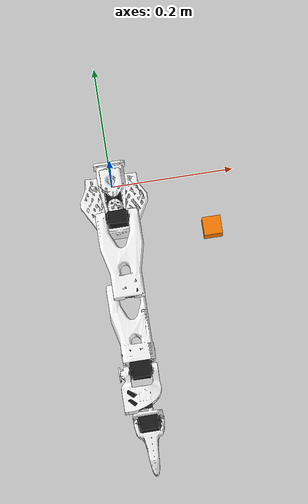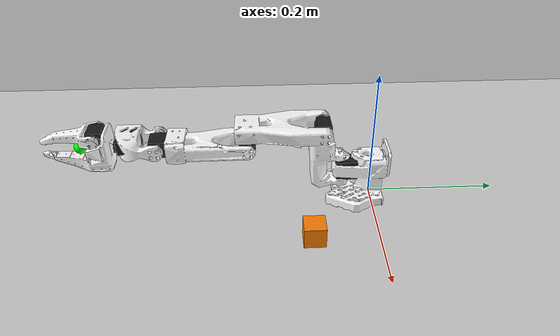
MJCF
<mujoco model="lerobot_so100_full">
    <compiler angle="radian" meshdir="../model/so100/assets" autolimits="true"/>

    <option timestep="0.001" cone="elliptic" impratio="10"/>

    <asset>
        <material name="black" rgba="0.1 0.1 0.1 1"/>
        <material name="white" rgba="1 1 1 1"/>

        <mesh name="Base" file="Base.stl"/>
        <mesh name="Base_Motor" file="Base_Motor.stl"/>
        <mesh name="Rotation_Pitch" file="Rotation_Pitch.stl"/>
        <mesh name="Rotation_Pitch_Motor" file="Rotation_Pitch_Motor.stl"/>
        <mesh name="Upper_Arm" file="Upper_Arm.stl"/>
        <mesh name="Upper_Arm_Motor" file="Upper_Arm_Motor.stl"/>
        <mesh name="Lower_Arm" file="Lower_Arm.stl"/>
        <mesh name="Lower_Arm_Motor" file="Lower_Arm_Motor.stl"/>
        <mesh name="Wrist_Pitch_Roll" file="Wrist_Pitch_Roll.stl"/>
        <mesh name="Wrist_Pitch_Roll_Motor" file="Wrist_Pitch_Roll_Motor.stl"/>
        <mesh name="Fixed_Jaw" file="Fixed_Jaw.stl"/>
        <mesh name="Fixed_Jaw_Motor" file="Fixed_Jaw_Motor.stl"/>
        <mesh name="Fixed_Jaw_Collision_1" file="Fixed_Jaw_Collision_1.stl"/>
        <mesh name="Fixed_Jaw_Collision_2" file="Fixed_Jaw_Collision_2.stl"/>
        <mesh name="Moving_Jaw" file="Moving_Jaw.stl"/>
        <mesh name="Moving_Jaw_Collision_1" file="Moving_Jaw_Collision_1.stl"/>
        <mesh name="Moving_Jaw_Collision_2" file="Moving_Jaw_Collision_2.stl"/>
        <mesh name="Moving_Jaw_Collision_3" file="Moving_Jaw_Collision_3.stl"/>
    </asset>

    <default>
        <default class="so_arm100">
            <!-- 극한의 응답성 및 안정성: frictionloss(3.0)로 중력 완벽 차단, armature(0.005)로 즉각 반응 -->
            <joint frictionloss="3.0" armature="0.005" damping="0.5"/>
            <!-- 초고속 위치 제어: kp(5000), kv(5), forcerange(500.0) -->
            <position kp="5000" kv="5" forcerange="-500 500"/>
            <default class="visual">
                <geom type="mesh" contype="0" conaffinity="0" density="0" group="2" material="white"/>
                <default class="motor_visual">
                    <geom material="black"/>
                </default>
            </default>
            <default class="collision">
                <geom group="3" type="mesh" material="white"/>
                <default class="finger_collision">
                    <geom type="box" solimp="2 1 0.01" solref="0.01 1" friction="1 0.005 0.0001"/>
                </default>
            </default>
        </default>
    </default>

    <worldbody>
        <light pos="0 0 2" dir="0 0 -1" diffuse="0.8 0.8 0.8" specular="0.3 0.3 0.3"/>
        <geom name="floor" type="plane" size="1 1 0.1" rgba="0.8 0.8 0.8 1" pos="0 0 -0.01"/>

        <body name="box" pos="0.15 -0.1 0.05">
            <joint type="free"/>
            <geom type="box" size="0.015 0.015 0.015" rgba="1 0.5 0 1" mass="0.05" friction="1 0.05 0.01"/>
        </body>

        <body name="Base" childclass="so_arm100" pos="0 0 0">
            <geom type="mesh" mesh="Base" class="visual"/>
            <geom type="mesh" mesh="Base_Motor" class="motor_visual"/>
            <geom type="mesh" mesh="Base" class="collision"/>

            <body name="Rotation_Pitch" pos="0 -0.0452 0.0165" quat="0.707105 0.707108 0 0">
                <joint name="Rotation" axis="0 1 0" range="-1.92 1.92"/>
                <geom type="mesh" mesh="Rotation_Pitch" class="visual"/>
                <geom type="mesh" mesh="Rotation_Pitch_Motor" class="motor_visual"/>
                <geom type="mesh" mesh="Rotation_Pitch" class="collision"/>

                <body name="Upper_Arm" pos="0 0.1025 0.0306" euler="1.57079 0 0">
                    <joint name="Pitch" axis="1 0 0" range="-3.32 0.174"/>
                    <geom type="mesh" mesh="Upper_Arm" class="visual"/>
                    <geom type="mesh" mesh="Upper_Arm_Motor" class="motor_visual"/>
                    <geom type="mesh" mesh="Upper_Arm" class="collision"/>

                    <body name="Lower_Arm" pos="0 0.11257 0.028" euler="-1.57079 0 0">
                        <joint name="Elbow" axis="1 0 0" range="-0.174 3.14"/>
                        <geom type="mesh" mesh="Lower_Arm" class="visual"/>
                        <geom type="mesh" mesh="Lower_Arm_Motor" class="motor_visual"/>
                        <geom type="mesh" mesh="Lower_Arm" class="collision"/>

                        <body name="Wrist_Pitch_Roll" pos="0 0.0052 0.1349" euler="-1.57079 0 0">
                            <joint name="Wrist_Pitch" axis="1 0 0" range="-1.66 1.66"/>
                            <geom type="mesh" mesh="Wrist_Pitch_Roll" class="visual"/>
                            <geom type="mesh" mesh="Wrist_Pitch_Roll_Motor" class="motor_visual"/>
                            <geom type="mesh" mesh="Wrist_Pitch_Roll" class="collision"/>

                            <body name="Fixed_Jaw" pos="0 -0.0601 0" euler="0 1.57079 0">
                                <joint name="Wrist_Roll" axis="0 1 0" range="-2.79 2.79"/>
                                <geom type="mesh" mesh="Fixed_Jaw" class="visual"/>
                                <geom type="mesh" mesh="Fixed_Jaw_Motor" class="motor_visual"/>
                                <geom type="mesh" mesh="Fixed_Jaw_Collision_1" class="collision"/>
                                <geom type="mesh" mesh="Fixed_Jaw_Collision_2" class="collision"/>

                                <geom class="finger_collision" name="fixed_jaw_pad_1" size="0.001 0.005 0.004" pos="0.0089 -0.1014 0"/>
                                <geom class="finger_collision" name="fixed_jaw_pad_2" size="0.001 0.005 0.006" pos="0.0109 -0.0914 0"/>
                                <geom class="finger_collision" name="fixed_jaw_pad_3" size="0.001 0.01 0.007" pos="0.0126 -0.0768 0"/>
                                <geom class="finger_collision" name="fixed_jaw_pad_4" size="0.001 0.01 0.008" pos="0.0143 -0.0572 0"/>

                                <body name="Moving_Jaw" pos="-0.0202 -0.0244 0" quat="0 0 1 0">
                                    <joint name="Jaw" axis="0 0 1" range="-0.174 1.75"/>
                                    <geom type="mesh" mesh="Moving_Jaw" class="visual"/>
                                    <geom type="mesh" mesh="Moving_Jaw_Collision_1" class="collision"/>
                                    <geom type="mesh" mesh="Moving_Jaw_Collision_2" class="collision"/>
                                    <geom type="mesh" mesh="Moving_Jaw_Collision_3" class="collision"/>

                                    <geom class="finger_collision" name="moving_jaw_pad_1" size="0.001 0.005 0.004" pos="-0.0113 -0.077 0"/>
                                    <geom class="finger_collision" name="moving_jaw_pad_2" size="0.001 0.005 0.006" pos="-0.0093 -0.067 0"/>
                                    <geom class="finger_collision" name="moving_jaw_pad_3" size="0.001 0.01 0.006" pos="-0.0073 -0.055 0"/>
                                    <geom class="finger_collision" name="moving_jaw_pad_4" size="0.001 0.01 0.008" pos="-0.0073 -0.035 0"/>
                                </body>

                                <site name="hand_axis" pos="0 -0.05 0" size="0.01" rgba="0 1 0 1"/>
                            </body>
                        </body>
                    </body>
                </body>
            </body>
        </body>
    </worldbody>

    <actuator>
        <position name="Rotation" joint="Rotation" inheritrange="1"/>
        <position name="Pitch" joint="Pitch" inheritrange="1"/>
        <position name="Elbow" joint="Elbow" inheritrange="1"/>
        <position name="Wrist_Pitch" joint="Wrist_Pitch" inheritrange="1"/>
        <position name="Wrist_Roll" joint="Wrist_Roll" inheritrange="1"/>
        <position name="Jaw" joint="Jaw" inheritrange="1"/>
    </actuator>

    <contact>
        <exclude body1="Base" body2="Rotation_Pitch"/>
    </contact>

    <keyframe>
        <key name="home" qpos="0 -1.57 1.57 1.57 -1.57 0" ctrl="0 -1.57 1.57 1.57 -1.57 0"/>
    </keyframe>
</mujoco>
